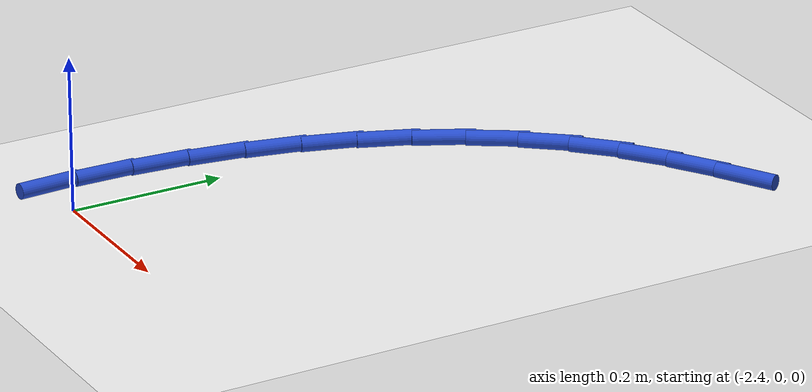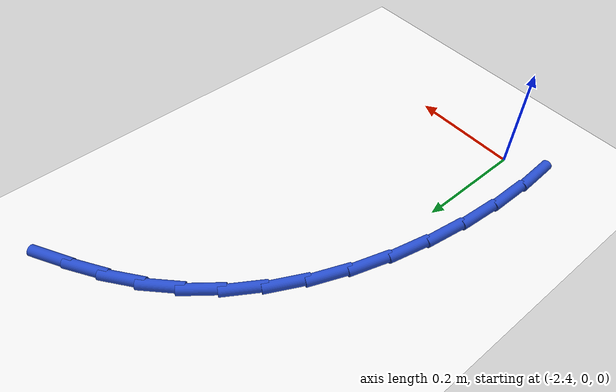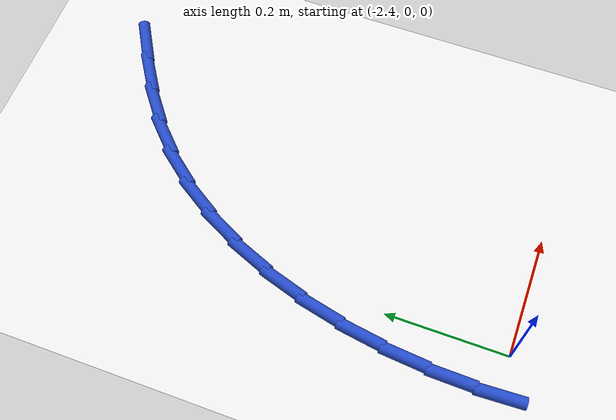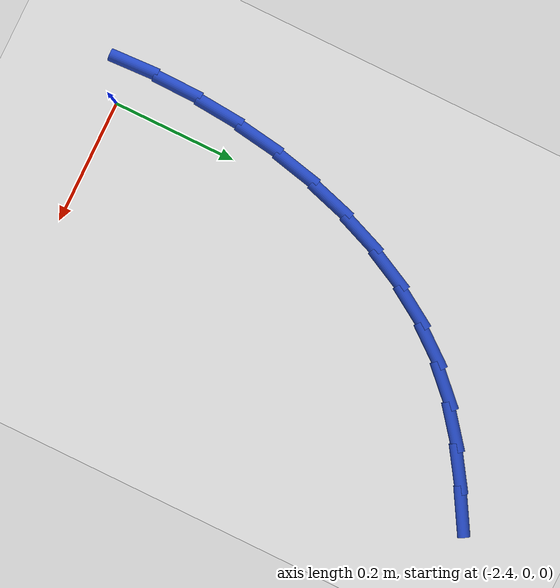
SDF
<sdf version="1.6">
 <world name="default">
  <model name="ground_plane">
   <static>1</static>
   <link name="link">
    <collision name="collision">
     <geometry><plane><normal>0 0 1</normal><size>100 100</size></plane></geometry>
     <surface><friction><ode><mu>100</mu><mu2>50</mu2></ode></friction></surface>
    </collision>
    <visual name="visual">
     <cast_shadows>0</cast_shadows>
     <geometry><plane><normal>0 0 1</normal><size>100 100</size></plane></geometry>
     <material>
      <script><uri>file://media/materials/scripts/gazebo.material</uri><name>Gazebo/WhiteGlow</name></script>
     </material>
    </visual>
   </link>
  </model>
  <model name="line">
   <link name="link_42">
    <pose>-2.0696224742131863 0.7515893217668786 0.01 0 1.57 0.532182149939314</pose>
    <collision name="collision">
     <geometry><cylinder><radius>0.01</radius><length>0.08</length></cylinder></geometry>
    </collision>
    <visual name="visual">
     <material>
      <script><name>Gazebo/Blue</name><uri>file://media/materials/scripts/gazebo.material</uri></script>
     </material>
     <geometry><cylinder><radius>0.01</radius><length>0.08</length></cylinder></geometry>
    </visual>
   </link>
   <link name="link_43">
    <pose>-2.1257611715467357 0.7185319348053966 0.01 0 1.57 0.5824091838566517</pose>
    <collision name="collision">
     <geometry><cylinder><radius>0.01</radius><length>0.08</length></cylinder></geometry>
    </collision>
    <visual name="visual">
     <material>
      <script><name>Gazebo/Blue</name><uri>file://media/materials/scripts/gazebo.material</uri></script>
     </material>
     <geometry><cylinder><radius>0.01</radius><length>0.08</length></cylinder></geometry>
    </visual>
   </link>
   <link name="link_44">
    <pose>-2.1798335570541303 0.6829189308704422 0.01 0 1.57 0.66721670930658</pose>
    <collision name="collision">
     <geometry><cylinder><radius>0.01</radius><length>0.08</length></cylinder></geometry>
    </collision>
    <visual name="visual">
     <material>
      <script><name>Gazebo/Blue</name><uri>file://media/materials/scripts/gazebo.material</uri></script>
     </material>
     <geometry><cylinder><radius>0.01</radius><length>0.08</length></cylinder></geometry>
    </visual>
   </link>
   <link name="link_45">
    <pose>-2.2304783962419092 0.6430242761489708 0.01 0 1.57 0.7829092548750622</pose>
    <collision name="collision">
     <geometry><cylinder><radius>0.01</radius><length>0.08</length></cylinder></geometry>
    </collision>
    <visual name="visual">
     <material>
      <script><name>Gazebo/Blue</name><uri>file://media/materials/scripts/gazebo.material</uri></script>
     </material>
     <geometry><cylinder><radius>0.01</radius><length>0.08</length></cylinder></geometry>
    </visual>
   </link>
   <link name="link_46">
    <pose>-2.2764355774663474 0.5972952938694681 0.01 0 1.57 0.9013917586143693</pose>
    <collision name="collision">
     <geometry><cylinder><radius>0.01</radius><length>0.08</length></cylinder></geometry>
    </collision>
    <visual name="visual">
     <material>
      <script><name>Gazebo/Blue</name><uri>file://media/materials/scripts/gazebo.material</uri></script>
     </material>
     <geometry><cylinder><radius>0.01</radius><length>0.08</length></cylinder></geometry>
    </visual>
   </link>
   <link name="link_47">
    <pose>-2.3173023969834206 0.5456491797695744 0.01 0 1.57 1.009171466183058</pose>
    <collision name="collision">
     <geometry><cylinder><radius>0.01</radius><length>0.08</length></cylinder></geometry>
    </collision>
    <visual name="visual">
     <material>
      <script><name>Gazebo/Blue</name><uri>file://media/materials/scripts/gazebo.material</uri></script>
     </material>
     <geometry><cylinder><radius>0.01</radius><length>0.08</length></cylinder></geometry>
    </visual>
   </link>
   <link name="link_48">
    <pose>-2.3531081697635527 0.4887437484126131 0.01 0 1.57 1.1068014907556654</pose>
    <collision name="collision">
     <geometry><cylinder><radius>0.01</radius><length>0.08</length></cylinder></geometry>
    </collision>
    <visual name="visual">
     <material>
      <script><name>Gazebo/Blue</name><uri>file://media/materials/scripts/gazebo.material</uri></script>
     </material>
     <geometry><cylinder><radius>0.01</radius><length>0.08</length></cylinder></geometry>
    </visual>
   </link>
   <link name="link_49">
    <pose>-2.3838855084362605 0.42724246760868734 0.01 0 1.57 1.1954643864821788</pose>
    <collision name="collision">
     <geometry><cylinder><radius>0.01</radius><length>0.08</length></cylinder></geometry>
    </collision>
    <visual name="visual">
     <material>
      <script><name>Gazebo/Blue</name><uri>file://media/materials/scripts/gazebo.material</uri></script>
     </material>
     <geometry><cylinder><radius>0.01</radius><length>0.08</length></cylinder></geometry>
    </visual>
   </link>
   <link name="link_50">
    <pose>-2.409667025631063 0.36180880516790076 0.01 0 1.57 1.2765704825054005</pose>
    <collision name="collision">
     <geometry><cylinder><radius>0.01</radius><length>0.08</length></cylinder></geometry>
    </collision>
    <visual name="visual">
     <material>
      <script><name>Gazebo/Blue</name><uri>file://media/materials/scripts/gazebo.material</uri></script>
     </material>
     <geometry><cylinder><radius>0.01</radius><length>0.08</length></cylinder></geometry>
    </visual>
   </link>
   <link name="link_51">
    <pose>-2.4304853339774755 0.29310622890035665 0.01 0 1.57 1.351573055543669</pose>
    <collision name="collision">
     <geometry><cylinder><radius>0.01</radius><length>0.08</length></cylinder></geometry>
    </collision>
    <visual name="visual">
     <material>
      <script><name>Gazebo/Blue</name><uri>file://media/materials/scripts/gazebo.material</uri></script>
     </material>
     <geometry><cylinder><radius>0.01</radius><length>0.08</length></cylinder></geometry>
    </visual>
   </link>
   <link name="link_52">
    <pose>-2.446373046105018 0.22179820661615868 0.01 0 1.57 1.4218766260425033</pose>
    <collision name="collision">
     <geometry><cylinder><radius>0.01</radius><length>0.08</length></cylinder></geometry>
    </collision>
    <visual name="visual">
     <material>
      <script><name>Gazebo/Blue</name><uri>file://media/materials/scripts/gazebo.material</uri></script>
     </material>
     <geometry><cylinder><radius>0.01</radius><length>0.08</length></cylinder></geometry>
    </visual>
   </link>
   <link name="link_53">
    <pose>-2.457362774643207 0.14854820612540995 0.01 0 1.57 1.4888058534333937</pose>
    <collision name="collision">
     <geometry><cylinder><radius>0.01</radius><length>0.08</length></cylinder></geometry>
    </collision>
    <visual name="visual">
     <material>
      <script><name>Gazebo/Blue</name><uri>file://media/materials/scripts/gazebo.material</uri></script>
     </material>
     <geometry><cylinder><radius>0.01</radius><length>0.08</length></cylinder></geometry>
    </visual>
   </link>
   <link name="link_54">
    <pose>-2.463487132221561 0.07401969523821407 0.01 0 1.57 1.5536095953540605</pose>
    <collision name="collision">
     <geometry><cylinder><radius>0.01</radius><length>0.08</length></cylinder></geometry>
    </collision>
    <visual name="visual">
     <material>
      <script><name>Gazebo/Blue</name><uri>file://media/materials/scripts/gazebo.material</uri></script>
     </material>
     <geometry><cylinder><radius>0.01</radius><length>0.08</length></cylinder></geometry>
    </visual>
   </link>
   <link name="link_55">
    <pose>-2.4647787314695964 -0.0011238582353255977 0.01 0 1.57 -1.5241089190410364</pose>
    <collision name="collision">
     <geometry><cylinder><radius>0.01</radius><length>0.08</length></cylinder></geometry>
    </collision>
    <visual name="visual">
     <material>
      <script><name>Gazebo/Blue</name><uri>file://media/materials/scripts/gazebo.material</uri></script>
     </material>
     <geometry><cylinder><radius>0.01</radius><length>0.08</length></cylinder></geometry>
    </visual>
   </link>
  </model>
 </world>
</sdf>
